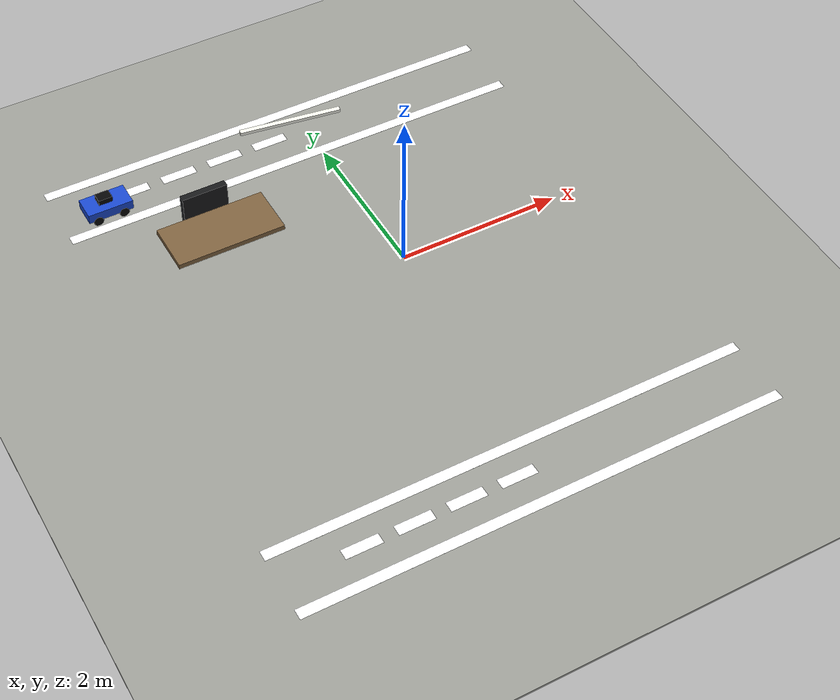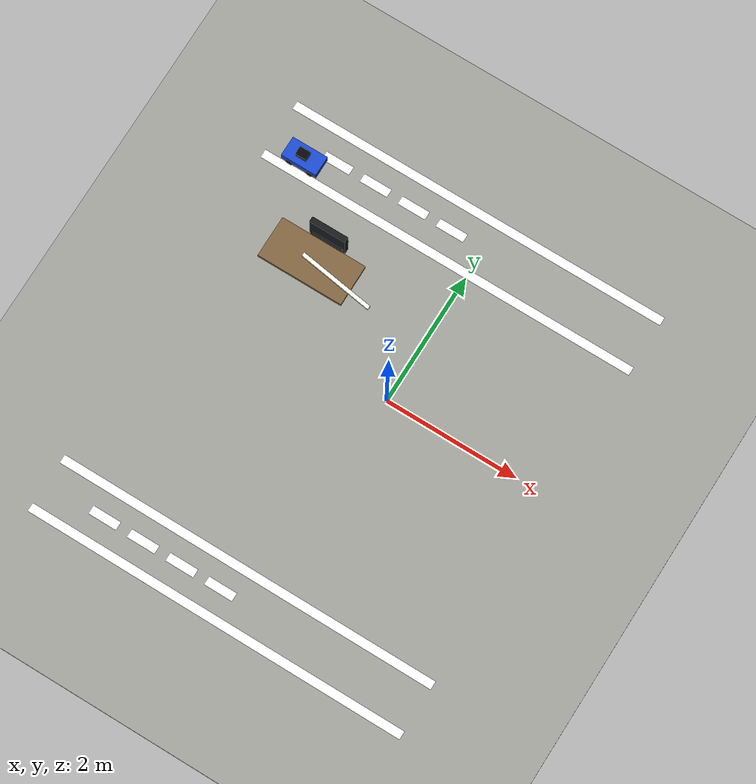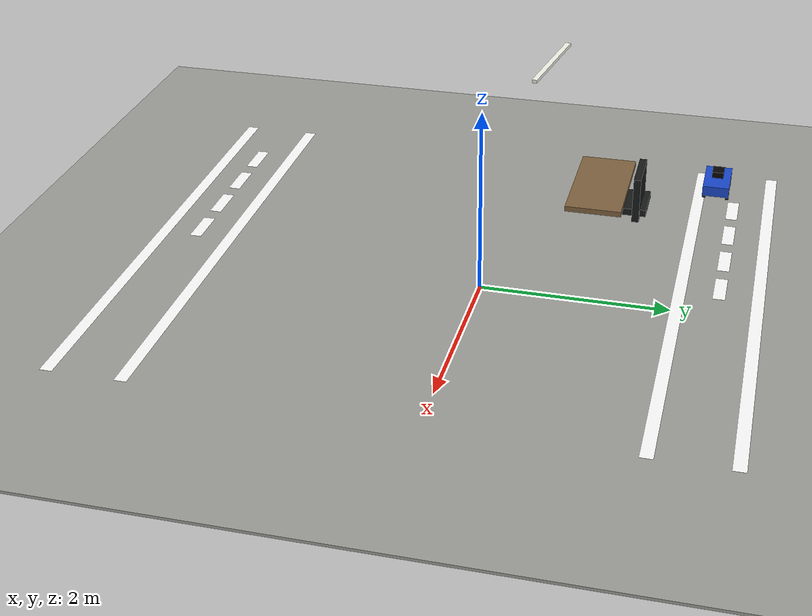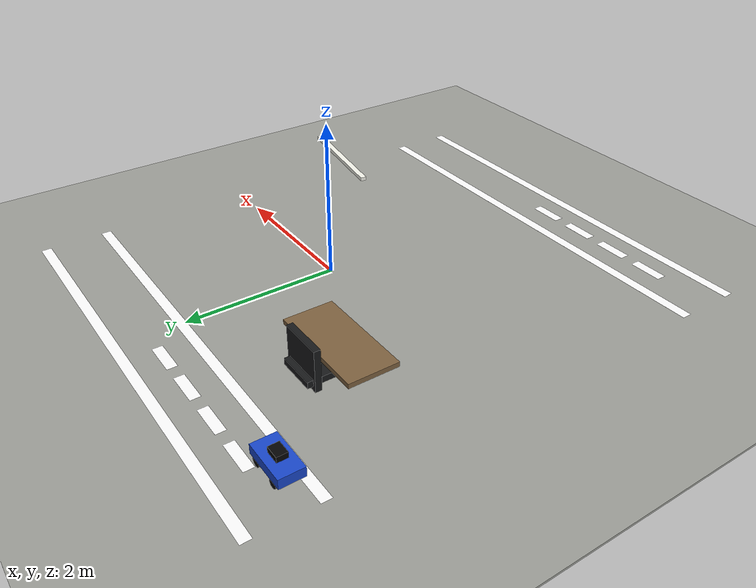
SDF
<sdf version="1.7">
 <world name="kookmin_xycar_track">
  <model name="kookmin_track">
   <static>true</static>
   <link name="floor_base">
    <pose>0.0000 0.0000 -0.0150 0.000000 0.000000 0.000000</pose>
    <collision name="collision">
     <geometry><box><size>22.5000 13.5000 0.0300</size></box></geometry>
     <surface>
      <friction>
       <ode><mu>50</mu><mu2>50</mu2></ode>
       <bullet><friction>1</friction><rolling_friction>0.1</rolling_friction></bullet>
      </friction>
     </surface>
    </collision>
    <visual name="visual">
     <geometry><box><size>22.5000 13.5000 0.0300</size></box></geometry>
     <material><ambient>0.6118 0.6157 0.5922 1</ambient><diffuse>0.6118 0.6157 0.5922 1</diffuse></material>
    </visual>
   </link>
   <link name="track_texture_surface">
    <pose>0 0 0.006 0 0 0</pose>
    <visual name="visual">
     <geometry><plane><normal>0 0 1</normal><size>22.5000 13.5000</size></plane></geometry>
     <material>
      <ambient>1 1 1 1</ambient>
      <diffuse>1 1 1 1</diffuse>
      <pbr>
       <metal>
        <albedo_map>file://media/materials/textures/kookmin_track_road.png</albedo_map>
        <roughness>1</roughness>
        <metalness>0</metalness>
       </metal>
      </pbr>
     </material>
    </visual>
   </link>
  </model>
  <model name="white_line_cad_03">
   <static>true</static>
   <pose>-0.3500 -3.7050 0.0144 0 0 0</pose>
   <link name="white_line_cad_03_surface">
    <visual name="visual">
     <cast_shadows>false</cast_shadows>
     <geometry><plane><normal>0 0 1</normal><size>5.7400 0.1300</size></plane></geometry>
     <material>
      <ambient>1 1 1 1</ambient>
      <diffuse>1 1 1 1</diffuse>
      <emissive>0.9490 0.9490 0.9255 1</emissive>
      <pbr>
       <metal>
        <albedo_map>file://media/materials/textures/kookmin_white_line_cad_03.png</albedo_map>
        <roughness>1</roughness>
        <metalness>0</metalness>
       </metal>
      </pbr>
     </material>
    </visual>
   </link>
  </model>
  <model name="white_line_cad_04">
   <static>true</static>
   <pose>-0.3500 -2.9350 0.0146 0 0 0</pose>
   <link name="white_line_cad_04_surface">
    <visual name="visual">
     <cast_shadows>false</cast_shadows>
     <geometry><plane><normal>0 0 1</normal><size>5.7400 0.1300</size></plane></geometry>
     <material>
      <ambient>1 1 1 1</ambient>
      <diffuse>1 1 1 1</diffuse>
      <emissive>0.9490 0.9490 0.9255 1</emissive>
      <pbr>
       <metal>
        <albedo_map>file://media/materials/textures/kookmin_white_line_cad_04.png</albedo_map>
        <roughness>1</roughness>
        <metalness>0</metalness>
       </metal>
      </pbr>
     </material>
    </visual>
   </link>
  </model>
  <model name="white_line_cad_05">
   <static>true</static>
   <pose>-0.3500 2.0550 0.0148 0 0 0</pose>
   <link name="white_line_cad_05_surface">
    <visual name="visual">
     <cast_shadows>false</cast_shadows>
     <geometry><plane><normal>0 0 1</normal><size>5.7800 0.1300</size></plane></geometry>
     <material>
      <ambient>1 1 1 1</ambient>
      <diffuse>1 1 1 1</diffuse>
      <emissive>0.9490 0.9490 0.9255 1</emissive>
      <pbr>
       <metal>
        <albedo_map>file://media/materials/textures/kookmin_white_line_cad_05.png</albedo_map>
        <roughness>1</roughness>
        <metalness>0</metalness>
       </metal>
      </pbr>
     </material>
    </visual>
   </link>
  </model>
  <model name="white_line_cad_06">
   <static>true</static>
   <pose>-0.3500 2.8650 0.0150 0 0 0</pose>
   <link name="white_line_cad_06_surface">
    <visual name="visual">
     <cast_shadows>false</cast_shadows>
     <geometry><plane><normal>0 0 1</normal><size>5.7800 0.1300</size></plane></geometry>
     <material>
      <ambient>1 1 1 1</ambient>
      <diffuse>1 1 1 1</diffuse>
      <emissive>0.9490 0.9490 0.9255 1</emissive>
      <pbr>
       <metal>
        <albedo_map>file://media/materials/textures/kookmin_white_line_cad_06.png</albedo_map>
        <roughness>1</roughness>
        <metalness>0</metalness>
       </metal>
      </pbr>
     </material>
    </visual>
   </link>
  </model>
  <model name="yellow_centerline_dash_001">
   <static>true</static>
   <pose>-2.3050 2.4650 0.0265 0 0 0</pose>
   <link name="yellow_centerline_dash_001_surface">
    <visual name="visual">
     <cast_shadows>false</cast_shadows>
     <geometry><plane><normal>0 0 1</normal><size>0.4300 0.1300</size></plane></geometry>
     <material>
      <ambient>1 1 1 1</ambient>
      <diffuse>1 1 1 1</diffuse>
      <emissive>1.0000 0.7686 0.0471 1</emissive>
      <pbr>
       <metal>
        <albedo_map>file://media/materials/textures/kookmin_yellow_centerline_dash_001.png</albedo_map>
        <roughness>1</roughness>
        <metalness>0</metalness>
       </metal>
      </pbr>
     </material>
    </visual>
   </link>
  </model>
  <model name="yellow_centerline_dash_002">
   <static>true</static>
   <pose>-1.7050 2.4650 0.0267 0 0 0</pose>
   <link name="yellow_centerline_dash_002_surface">
    <visual name="visual">
     <cast_shadows>false</cast_shadows>
     <geometry><plane><normal>0 0 1</normal><size>0.4300 0.1300</size></plane></geometry>
     <material>
      <ambient>1 1 1 1</ambient>
      <diffuse>1 1 1 1</diffuse>
      <emissive>1.0000 0.7686 0.0471 1</emissive>
      <pbr>
       <metal>
        <albedo_map>file://media/materials/textures/kookmin_yellow_centerline_dash_002.png</albedo_map>
        <roughness>1</roughness>
        <metalness>0</metalness>
       </metal>
      </pbr>
     </material>
    </visual>
   </link>
  </model>
  <model name="yellow_centerline_dash_003">
   <static>true</static>
   <pose>-1.1050 2.4650 0.0269 0 0 0</pose>
   <link name="yellow_centerline_dash_003_surface">
    <visual name="visual">
     <cast_shadows>false</cast_shadows>
     <geometry><plane><normal>0 0 1</normal><size>0.4300 0.1300</size></plane></geometry>
     <material>
      <ambient>1 1 1 1</ambient>
      <diffuse>1 1 1 1</diffuse>
      <emissive>1.0000 0.7686 0.0471 1</emissive>
      <pbr>
       <metal>
        <albedo_map>file://media/materials/textures/kookmin_yellow_centerline_dash_003.png</albedo_map>
        <roughness>1</roughness>
        <metalness>0</metalness>
       </metal>
      </pbr>
     </material>
    </visual>
   </link>
  </model>
  <model name="yellow_centerline_dash_004">
   <static>true</static>
   <pose>-0.5050 2.4650 0.0271 0 0 0</pose>
   <link name="yellow_centerline_dash_004_surface">
    <visual name="visual">
     <cast_shadows>false</cast_shadows>
     <geometry><plane><normal>0 0 1</normal><size>0.4300 0.1300</size></plane></geometry>
     <material>
      <ambient>1 1 1 1</ambient>
      <diffuse>1 1 1 1</diffuse>
      <emissive>1.0000 0.7686 0.0471 1</emissive>
      <pbr>
       <metal>
        <albedo_map>file://media/materials/textures/kookmin_yellow_centerline_dash_004.png</albedo_map>
        <roughness>1</roughness>
        <metalness>0</metalness>
       </metal>
      </pbr>
     </material>
    </visual>
   </link>
  </model>
  <model name="yellow_centerline_dash_036">
   <static>true</static>
   <pose>-2.3050 -3.3150 0.0335 0 0 0</pose>
   <link name="yellow_centerline_dash_036_surface">
    <visual name="visual">
     <cast_shadows>false</cast_shadows>
     <geometry><plane><normal>0 0 1</normal><size>0.4300 0.1300</size></plane></geometry>
     <material>
      <ambient>1 1 1 1</ambient>
      <diffuse>1 1 1 1</diffuse>
      <emissive>1.0000 0.7686 0.0471 1</emissive>
      <pbr>
       <metal>
        <albedo_map>file://media/materials/textures/kookmin_yellow_centerline_dash_036.png</albedo_map>
        <roughness>1</roughness>
        <metalness>0</metalness>
       </metal>
      </pbr>
     </material>
    </visual>
   </link>
  </model>
  <model name="yellow_centerline_dash_037">
   <static>true</static>
   <pose>-1.7050 -3.3150 0.0337 0 0 0</pose>
   <link name="yellow_centerline_dash_037_surface">
    <visual name="visual">
     <cast_shadows>false</cast_shadows>
     <geometry><plane><normal>0 0 1</normal><size>0.4300 0.1300</size></plane></geometry>
     <material>
      <ambient>1 1 1 1</ambient>
      <diffuse>1 1 1 1</diffuse>
      <emissive>1.0000 0.7686 0.0471 1</emissive>
      <pbr>
       <metal>
        <albedo_map>file://media/materials/textures/kookmin_yellow_centerline_dash_037.png</albedo_map>
        <roughness>1</roughness>
        <metalness>0</metalness>
       </metal>
      </pbr>
     </material>
    </visual>
   </link>
  </model>
  <model name="yellow_centerline_dash_038">
   <static>true</static>
   <pose>-1.1050 -3.3150 0.0339 0 0 0</pose>
   <link name="yellow_centerline_dash_038_surface">
    <visual name="visual">
     <cast_shadows>false</cast_shadows>
     <geometry><plane><normal>0 0 1</normal><size>0.4300 0.1300</size></plane></geometry>
     <material>
      <ambient>1 1 1 1</ambient>
      <diffuse>1 1 1 1</diffuse>
      <emissive>1.0000 0.7686 0.0471 1</emissive>
      <pbr>
       <metal>
        <albedo_map>file://media/materials/textures/kookmin_yellow_centerline_dash_038.png</albedo_map>
        <roughness>1</roughness>
        <metalness>0</metalness>
       </metal>
      </pbr>
     </material>
    </visual>
   </link>
  </model>
  <model name="yellow_centerline_dash_039">
   <static>true</static>
   <pose>-0.5050 -3.3150 0.0341 0 0 0</pose>
   <link name="yellow_centerline_dash_039_surface">
    <visual name="visual">
     <cast_shadows>false</cast_shadows>
     <geometry><plane><normal>0 0 1</normal><size>0.4300 0.1300</size></plane></geometry>
     <material>
      <ambient>1 1 1 1</ambient>
      <diffuse>1 1 1 1</diffuse>
      <emissive>1.0000 0.7686 0.0471 1</emissive>
      <pbr>
       <metal>
        <albedo_map>file://media/materials/textures/kookmin_yellow_centerline_dash_039.png</albedo_map>
        <roughness>1</roughness>
        <metalness>0</metalness>
       </metal>
      </pbr>
     </material>
    </visual>
   </link>
  </model>
  <model name="room_table_top_2">
   <static>true</static>
   <pose>-1.8000 1.0000 0.4300 0.000000 0.000000 0.000000</pose>
   <link name="table_top_2">
    <visual name="visual">
     <geometry><box><size>1.3000 0.6200 0.0600</size></box></geometry>
     <material><ambient>0.4941 0.3843 0.2471 1</ambient><diffuse>0.4941 0.3843 0.2471 1</diffuse></material>
    </visual>
   </link>
  </model>
  <model name="room_chair_back_2">
   <static>true</static>
   <pose>-1.8000 1.4300 0.4200 0.000000 0.000000 0.000000</pose>
   <link name="chair_back_2">
    <visual name="visual">
     <geometry><box><size>0.5500 0.0800 0.5200</size></box></geometry>
     <material><ambient>0.0941 0.0980 0.1020 1</ambient><diffuse>0.0941 0.0980 0.1020 1</diffuse></material>
    </visual>
   </link>
  </model>
  <model name="room_chair_seat_2">
   <static>true</static>
   <pose>-1.8000 1.3400 0.2600 0.000000 0.000000 0.000000</pose>
   <link name="chair_seat_2">
    <visual name="visual">
     <geometry><box><size>0.4800 0.4000 0.0800</size></box></geometry>
     <material><ambient>0.0941 0.0980 0.1020 1</ambient><diffuse>0.0941 0.0980 0.1020 1</diffuse></material>
    </visual>
   </link>
  </model>
  <model name="room_ceiling_light_3">
   <static>true</static>
   <pose>-1.1000 0.5000 2.1500 0.000000 0.000000 -0.150000</pose>
   <link name="ceiling_light_3">
    <visual name="visual">
     <geometry><box><size>1.1000 0.0550 0.0350</size></box></geometry>
     <material><ambient>0.9608 0.9608 0.9216 1</ambient><diffuse>0.9608 0.9608 0.9216 1</diffuse></material>
    </visual>
   </link>
  </model>
  <model name="xycar_ackermann">
   <pose>-2.7000 2.2500 0.0500 0 0 0</pose>
   <link name="chassis">
    <pose>0 0 0.135 0 0 0</pose>
    <inertial>
     <mass>2.2</mass>
     <inertia><ixx>0.055</ixx><ixy>0</ixy><ixz>0</ixz><iyy>0.13</iyy><iyz>0</iyz><izz>0.16</izz></inertia>
    </inertial>
    <collision name="collision"><geometry><box><size>0.55 0.30 0.12</size></box></geometry></collision>
    <visual name="body">
     <visibility_flags>2</visibility_flags>
     <geometry><box><size>0.55 0.30 0.12</size></box></geometry>
     <material><ambient>0.1 0.28 0.8 1</ambient><diffuse>0.1 0.28 0.8 1</diffuse></material>
    </visual>
    <visual name="mini_pc_body">
     <visibility_flags>2</visibility_flags>
     <pose>-0.02 0 0.115 0 0 0</pose>
     <geometry><box><size>0.17 0.13 0.07</size></box></geometry>
     <material><ambient>0.02 0.02 0.02 1</ambient><diffuse>0.02 0.02 0.02 1</diffuse></material>
    </visual>
    <visual name="lidar_body">
     <pose>0.225 0 -0.0125 0 0 0</pose>
     <geometry><cylinder><length>0.035</length><radius>0.040</radius></cylinder></geometry>
     <material><ambient>0.01 0.01 0.01 1</ambient><diffuse>0.01 0.01 0.01 1</diffuse></material>
    </visual>
    <sensor name="front_camera" type="camera">
     <pose>0.120 0 0.095 0 0.1000 0</pose>
     <topic>/image_raw</topic>
     <update_rate>30</update_rate>
     <camera>
      <camera_info_topic>/camera_info</camera_info_topic>
      <horizontal_fov>1.7968</horizontal_fov>
      <image><width>1280</width><height>1024</height><format>R8G8B8</format></image>
      <clip><near>0.03</near><far>20</far></clip>
      <visibility_mask>4294967293</visibility_mask>
      <lens>
       <type>equidistant</type>
       <scale_to_hfov>true</scale_to_hfov>
       <cutoff_angle>1.5707963267948966</cutoff_angle>
       <env_texture_size>512</env_texture_size>
      </lens>
     </camera>
     <always_on>true</always_on>
     <visualize>false</visualize>
    </sensor>
    <sensor name="lidar" type="gpu_lidar">
     <pose>0.225 0 0.005 0 0 0</pose>
     <topic>/scan</topic>
     <update_rate>10</update_rate>
     <ray>
      <scan>
       <horizontal>
        <samples>505</samples>
        <resolution>1</resolution>
        <min_angle>-3.14159</min_angle>
        <max_angle>3.14159</max_angle>
       </horizontal>
      </scan>
      <range><min>0.10</min><max>12.0</max><resolution>0.01</resolution></range>
     </ray>
     <always_on>true</always_on>
     <visualize>false</visualize>
    </sensor>
   </link>
   <link name="front_left_wheel_steering_link">
    <pose>0.16 0.1200 0.06 0 0 0</pose>
    <inertial><mass>0.08</mass><inertia><ixx>0.0002</ixx><iyy>0.0002</iyy><izz>0.0002</izz></inertia></inertial>
   </link>
   <link name="front_right_wheel_steering_link">
    <pose>0.16 -0.1200 0.06 0 0 0</pose>
    <inertial><mass>0.08</mass><inertia><ixx>0.0002</ixx><iyy>0.0002</iyy><izz>0.0002</izz></inertia></inertial>
   </link>
   <link name="front_left_wheel">
    <pose>0.16 0.1325 0.06 -1.5707 0 0</pose>
    <inertial><mass>0.12</mass><inertia><ixx>0.0004</ixx><iyy>0.0004</iyy><izz>0.00025</izz></inertia></inertial>
    <collision name="collision">
     <geometry><cylinder><length>0.035</length><radius>0.06</radius></cylinder></geometry>
    </collision>
    <visual name="visual">
     <visibility_flags>2</visibility_flags>
     <geometry><cylinder><length>0.035</length><radius>0.06</radius></cylinder></geometry>
     <material><ambient>0.03 0.03 0.03 1</ambient><diffuse>0.03 0.03 0.03 1</diffuse></material>
    </visual>
   </link>
   <link name="front_right_wheel">
    <pose>0.16 -0.1325 0.06 -1.5707 0 0</pose>
    <inertial><mass>0.12</mass><inertia><ixx>0.0004</ixx><iyy>0.0004</iyy><izz>0.00025</izz></inertia></inertial>
    <collision name="collision">
     <geometry><cylinder><length>0.035</length><radius>0.06</radius></cylinder></geometry>
    </collision>
    <visual name="visual">
     <visibility_flags>2</visibility_flags>
     <geometry><cylinder><length>0.035</length><radius>0.06</radius></cylinder></geometry>
     <material><ambient>0.03 0.03 0.03 1</ambient><diffuse>0.03 0.03 0.03 1</diffuse></material>
    </visual>
   </link>
   <link name="rear_left_wheel">
    <pose>-0.16 0.1325 0.06 -1.5707 0 0</pose>
    <inertial><mass>0.12</mass><inertia><ixx>0.0004</ixx><iyy>0.0004</iyy><izz>0.00025</izz></inertia></inertial>
    <collision name="collision">
     <geometry><cylinder><length>0.035</length><radius>0.06</radius></cylinder></geometry>
    </collision>
    <visual name="visual">
     <visibility_flags>2</visibility_flags>
     <geometry><cylinder><length>0.035</length><radius>0.06</radius></cylinder></geometry>
     <material><ambient>0.03 0.03 0.03 1</ambient><diffuse>0.03 0.03 0.03 1</diffuse></material>
    </visual>
   </link>
   <link name="rear_right_wheel">
    <pose>-0.16 -0.1325 0.06 -1.5707 0 0</pose>
    <inertial><mass>0.12</mass><inertia><ixx>0.0004</ixx><iyy>0.0004</iyy><izz>0.00025</izz></inertia></inertial>
    <collision name="collision">
     <geometry><cylinder><length>0.035</length><radius>0.06</radius></cylinder></geometry>
    </collision>
    <visual name="visual">
     <visibility_flags>2</visibility_flags>
     <geometry><cylinder><length>0.035</length><radius>0.06</radius></cylinder></geometry>
     <material><ambient>0.03 0.03 0.03 1</ambient><diffuse>0.03 0.03 0.03 1</diffuse></material>
    </visual>
   </link>
   <joint name="front_left_wheel_steering_joint" type="revolute">
    <parent>chassis</parent>
    <child>front_left_wheel_steering_link</child>
    <axis>
     <xyz>0 0 1</xyz>
     <limit><lower>-0.7000</lower><upper>0.7000</upper><velocity>2.0</velocity><effort>8</effort></limit>
    </axis>
   </joint>
   <joint name="front_right_wheel_steering_joint" type="revolute">
    <parent>chassis</parent>
    <child>front_right_wheel_steering_link</child>
    <axis>
     <xyz>0 0 1</xyz>
     <limit><lower>-0.7000</lower><upper>0.7000</upper><velocity>2.0</velocity><effort>8</effort></limit>
    </axis>
   </joint>
   <joint name="front_left_wheel_joint" type="revolute">
    <parent>front_left_wheel_steering_link</parent>
    <child>front_left_wheel</child>
    <axis><xyz>0 0 1</xyz><limit><lower>-1.79769e+308</lower><upper>1.79769e+308</upper></limit></axis>
   </joint>
   <joint name="front_right_wheel_joint" type="revolute">
    <parent>front_right_wheel_steering_link</parent>
    <child>front_right_wheel</child>
    <axis><xyz>0 0 1</xyz><limit><lower>-1.79769e+308</lower><upper>1.79769e+308</upper></limit></axis>
   </joint>
   <joint name="rear_left_wheel_joint" type="revolute">
    <parent>chassis</parent>
    <child>rear_left_wheel</child>
    <axis><xyz>0 0 1</xyz><limit><lower>-1.79769e+308</lower><upper>1.79769e+308</upper></limit></axis>
   </joint>
   <joint name="rear_right_wheel_joint" type="revolute">
    <parent>chassis</parent>
    <child>rear_right_wheel</child>
    <axis><xyz>0 0 1</xyz><limit><lower>-1.79769e+308</lower><upper>1.79769e+308</upper></limit></axis>
   </joint>
   <plugin filename="gz-sim-ackermann-steering-system" name="gz::sim::systems::AckermannSteering">
    <left_joint>front_left_wheel_joint</left_joint>
    <left_joint>rear_left_wheel_joint</left_joint>
    <right_joint>front_right_wheel_joint</right_joint>
    <right_joint>rear_right_wheel_joint</right_joint>
    <left_steering_joint>front_left_wheel_steering_joint</left_steering_joint>
    <right_steering_joint>front_right_wheel_steering_joint</right_steering_joint>
    <kingpin_width>0.240</kingpin_width>
    <steering_limit>0.5500</steering_limit>
    <wheel_base>0.32</wheel_base>
    <wheel_separation>0.265</wheel_separation>
    <wheel_radius>0.06</wheel_radius>
    <min_velocity>-4.0000</min_velocity>
    <max_velocity>8.0000</max_velocity>
    <min_acceleration>-2</min_acceleration>
    <max_acceleration>2</max_acceleration>
   </plugin>
  </model>
 </world>
</sdf>
